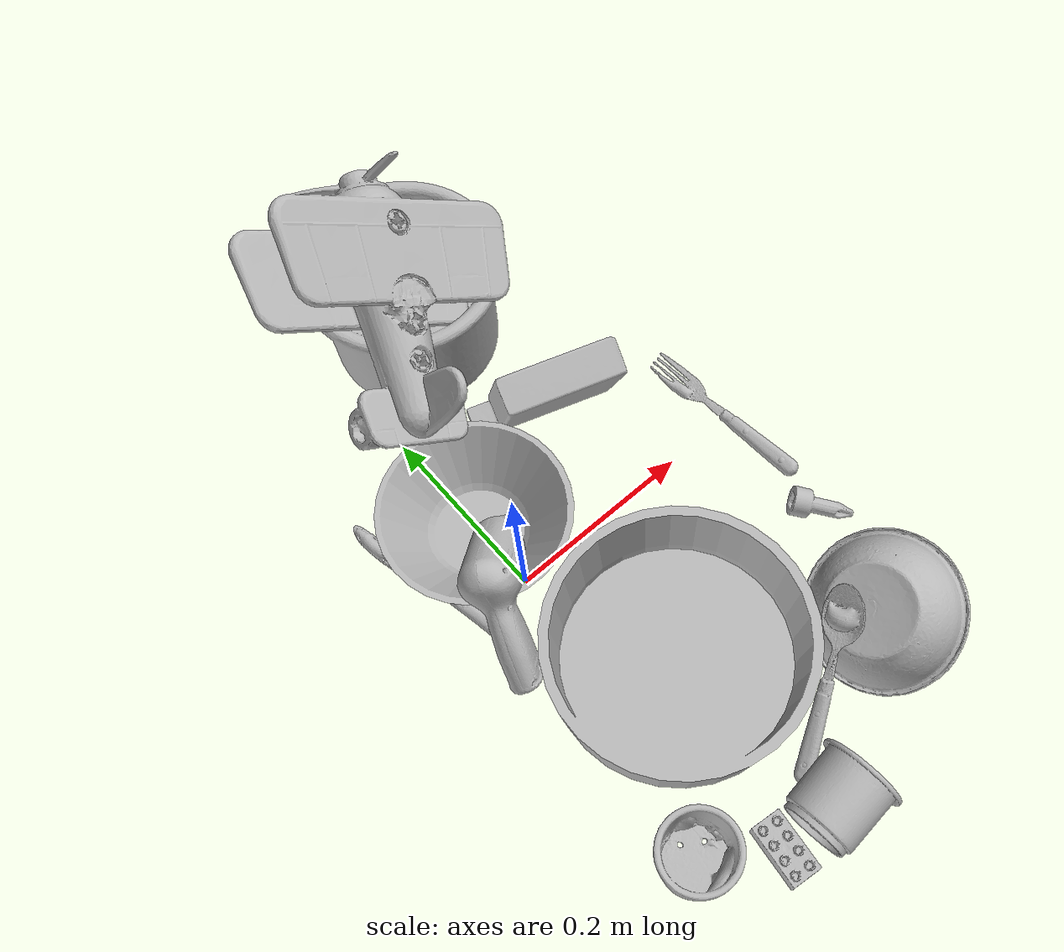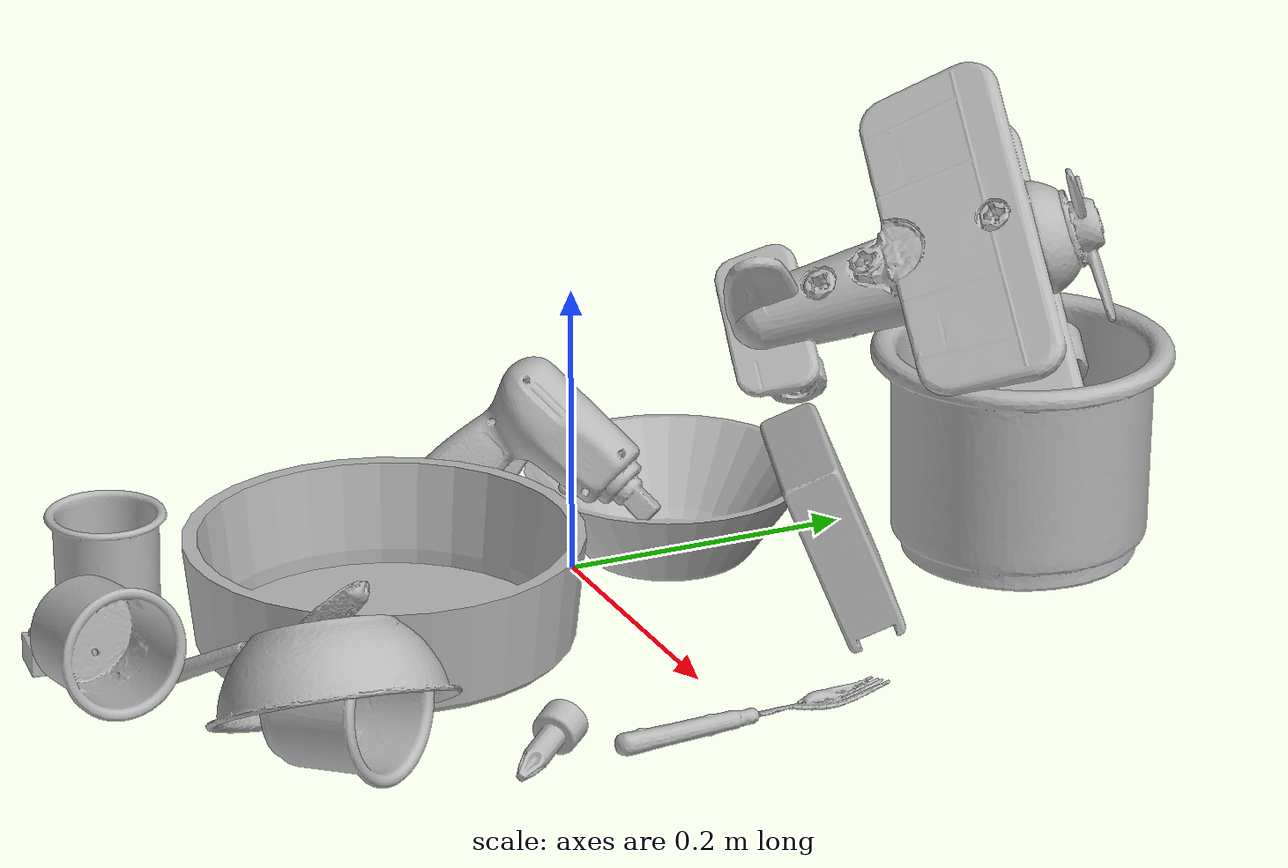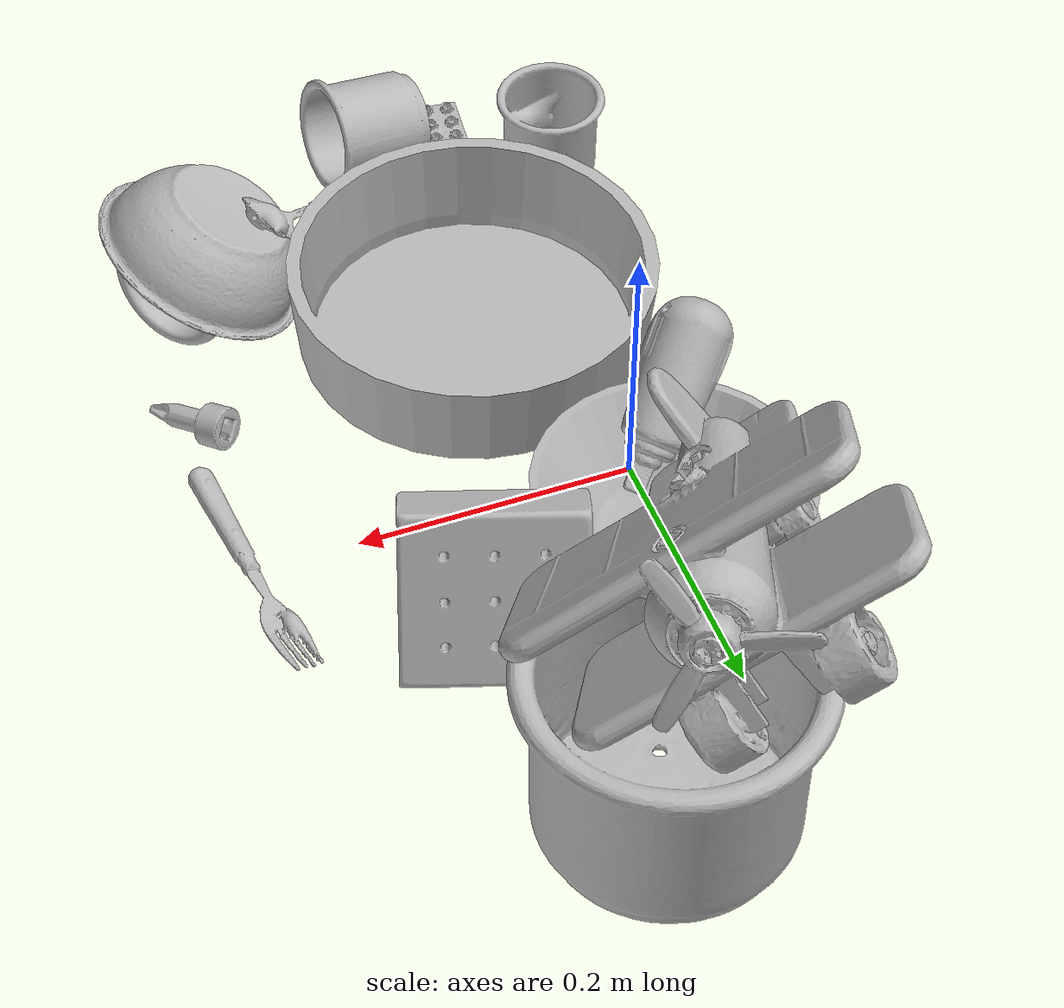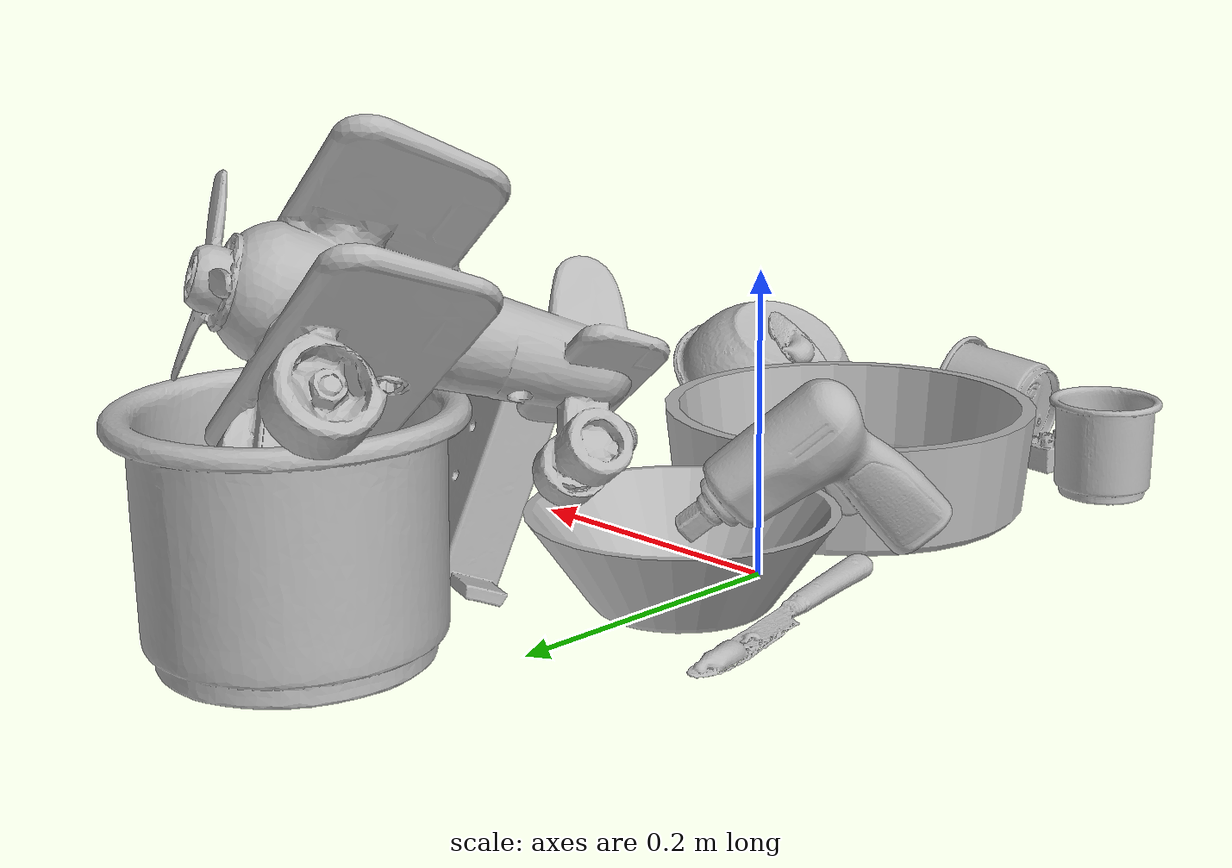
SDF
<sdf version="1.4">
  <world name="default">
    <light name="light1" type="point">
      <pose>0 0 1 0 0 0</pose>
      <diffuse>3 3 3 1</diffuse>
      <specular>3 3 3 1</specular>
    </light>
    <light name="light2" type="point">
      <pose>0 0.5 2 0 0 0</pose>
      <diffuse>1 1 1 1</diffuse>
      <specular>1 1 1 1</specular>
    </light>
    <light name="light3" type="point">
      <pose>0 0.5 2 0 0 0</pose>
      <diffuse>3 3 3 1</diffuse>
      <specular>3 3 3 1</specular>
    </light>
    <scene>
      <ambient>0.7 0.7 0.7</ambient>
    </scene>
    <model name="plate1">
      <link name="link_plate1">
        <collision name="default">
          <geometry>
            <mesh>
              <uri>model://pan_tefal/collision_meshes/collision.obj</uri>
              <scale>1.0 1.0 1.0</scale>
            </mesh>
          </geometry>
          <surface>
            <friction>
              <ode>
                <mu>0.5</mu>
                <mu2>0.5</mu2>
              </ode>
            </friction>
          <contact>
        <ode>
            <max_vel>0</max_vel>
            <min_depth>0.0001</min_depth>
            <kp>1e8</kp>
        </ode>
    </contact></surface>
        </collision>
        <visual name="default">
          <geometry>
            <mesh>
              <uri>model://pan_tefal/visual_meshes/visual.dae</uri>
              <scale>1.0 1.0 1.0</scale>
            </mesh>
          </geometry>
        </visual>
        <inertial>
          <mass>1.2414644956588745</mass>
          <pose>-0.0001800298341549933 3.278589065303095e-05 -0.00851493515074253 0.0008190165640447202 -0.0003301348973125405 -0.33185319573483557</pose>
          <inertia>
            <ixx>0.00856977</ixx>
            <iyy>0.008625018</iyy>
            <izz>0.015775295</izz>
            <ixy>0</ixy>
            <ixz>0</ixz>
            <iyz>0</iyz>
          </inertia>
        </inertial>
      </link>
      <pose>0.05789005756378174 -0.1600017100572586 0.03804998844861984 -1.0553346728723932e-09 -2.56436202134753e-08 0.8923427186321509</pose>
    </model>
    <model name="cup1">
      <link name="link_cup1">
        <collision name="default">
          <geometry>
            <mesh>
              <uri>model://j_cups/collision_meshes/collision.obj</uri>
              <scale>2.0 2.0 2.0</scale>
            </mesh>
          </geometry>
          <surface>
            <friction>
              <ode>
                <mu>0.5</mu>
                <mu2>0.5</mu2>
              </ode>
            </friction>
          <contact>
        <ode>
            <max_vel>0</max_vel>
            <min_depth>0.0001</min_depth>
            <kp>1e8</kp>
        </ode>
    </contact></surface>
        </collision>
        <visual name="default">
          <geometry>
            <mesh>
              <uri>model://j_cups/visual_meshes/visual.dae</uri>
              <scale>2.0 2.0 2.0</scale>
            </mesh>
          </geometry>
        </visual>
        <inertial>
          <mass>0.42814481258392334</mass>
          <pose>0.0012329709716141224 0.0010797895956784487 -0.002695801667869091 0.030303634199985552 0.037580068488308346 0.43868666904956827</pose>
          <inertia>
            <ixx>0.0025146077</ixx>
            <iyy>0.0025407567</iyy>
            <izz>0.0028988216</izz>
            <ixy>0</ixy>
            <ixz>0</ixz>
            <iyz>0</iyz>
          </inertia>
        </inertial>
      </link>
      <pose>0.0933929979801178 0.291197270154953 0.07600146532058716 6.113491894112538e-05 -0.00034751538441619675 0.9993717859415364</pose>
    </model>
    <model name="silverware1">
      <link name="link_silverware1">
        <collision name="default">
          <geometry>
            <mesh>
              <uri>model://fork/collision_meshes/collision.obj</uri>
              <scale>1.0 1.0 1.0</scale>
            </mesh>
          </geometry>
          <surface>
            <friction>
              <ode>
                <mu>0.5</mu>
                <mu2>0.5</mu2>
              </ode>
            </friction>
          <contact>
        <ode>
            <max_vel>0</max_vel>
            <min_depth>0.0001</min_depth>
            <kp>1e8</kp>
        </ode>
    </contact></surface>
        </collision>
        <visual name="default">
          <geometry>
            <mesh>
              <uri>model://fork/visual_meshes/visual.dae</uri>
              <scale>1.0 1.0 1.0</scale>
            </mesh>
          </geometry>
        </visual>
        <inertial>
          <mass>0.013809523545205593</mass>
          <pose>-0.029570044949650764 0.0004658822435885668 0.00032188615296036005 -0.013551743215227608 -0.010977837587661193 0.014453899243146438</pose>
          <inertia>
            <ixx>4.84102e-07</ixx>
            <iyy>3.6052697e-05</iyy>
            <izz>3.6269223e-05</izz>
            <ixy>0</ixy>
            <ixz>0</ixz>
            <iyz>0</iyz>
          </inertia>
        </inertial>
      </link>
      <pose>0.2773734927177429 0.0013120900839567184 0.005679761990904808 -0.17140311780609635 0.026406191837035888 1.6553416820521212</pose>
    </model>
    <model name="silverware2">
      <link name="link_silverware2">
        <collision name="default">
          <geometry>
            <mesh>
              <uri>model://knife/collision_meshes/collision.obj</uri>
              <scale>1.0 1.0 1.0</scale>
            </mesh>
          </geometry>
          <surface>
            <friction>
              <ode>
                <mu>0.5</mu>
                <mu2>0.5</mu2>
              </ode>
            </friction>
          <contact>
        <ode>
            <max_vel>0</max_vel>
            <min_depth>0.0001</min_depth>
            <kp>1e8</kp>
        </ode>
    </contact></surface>
        </collision>
        <visual name="default">
          <geometry>
            <mesh>
              <uri>model://knife/visual_meshes/visual.dae</uri>
              <scale>1.0 1.0 1.0</scale>
            </mesh>
          </geometry>
        </visual>
        <inertial>
          <mass>0.021972408518195152</mass>
          <pose>-0.023785250261425972 0.0015275123296305537 5.0620161346159875e-05 0.07305788583029697 0.01724841890740089 -0.007409824444555058</pose>
          <inertia>
            <ixx>6.2366604e-07</ixx>
            <iyy>8.441444e-05</iyy>
            <izz>8.46153e-05</izz>
            <ixy>0</ixy>
            <ixz>0</ixz>
            <iyz>0</iyz>
          </inertia>
        </inertial>
      </link>
      <pose>-0.07339651137590408 0.05538065731525421 0.005810708273202181 2.8893539316703816 0.02591456615764247 1.7924760188301907</pose>
    </model>
    <model name="silverware3">
      <link name="link_silverware3">
        <collision name="default">
          <geometry>
            <mesh>
              <uri>model://spoon/collision_meshes/collision.obj</uri>
              <scale>1.0 1.0 1.0</scale>
            </mesh>
          </geometry>
          <surface>
            <friction>
              <ode>
                <mu>0.5</mu>
                <mu2>0.5</mu2>
              </ode>
            </friction>
          <contact>
        <ode>
            <max_vel>0</max_vel>
            <min_depth>0.0001</min_depth>
            <kp>1e8</kp>
        </ode>
    </contact></surface>
        </collision>
        <visual name="default">
          <geometry>
            <mesh>
              <uri>model://spoon/visual_meshes/visual.dae</uri>
              <scale>1.0 1.0 1.0</scale>
            </mesh>
          </geometry>
        </visual>
        <inertial>
          <mass>0.026694269850850105</mass>
          <pose>-0.005526325199753046 -0.0016034168656915426 -0.0007271653739735484 0.035216710718480135 -0.03906584501417282 0.00615060951780049</pose>
          <inertia>
            <ixx>1.484779e-06</ixx>
            <iyy>0.000101570804</iyy>
            <izz>0.000102303035</izz>
            <ixy>0</ixy>
            <ixz>0</ixz>
            <iyz>0</iyz>
          </inertia>
        </inertial>
      </link>
      <pose>0.13438712060451508 -0.27585557103157043 0.05156669393181801 -0.35748540954304886 -0.4883509279327515 0.5757164640523126</pose>
    </model>
    <model name="cup3">
      <link name="link_cup3">
        <collision name="default">
          <geometry>
            <mesh>
              <uri>model://f_cups/collision_meshes/collision.obj</uri>
              <scale>1.0 1.0 1.0</scale>
            </mesh>
          </geometry>
          <surface>
            <friction>
              <ode>
                <mu>0.5</mu>
                <mu2>0.5</mu2>
              </ode>
            </friction>
          <contact>
        <ode>
            <max_vel>0</max_vel>
            <min_depth>0.0001</min_depth>
            <kp>1e8</kp>
        </ode>
    </contact></surface>
        </collision>
        <visual name="default">
          <geometry>
            <mesh>
              <uri>model://f_cups/visual_meshes/visual.dae</uri>
              <scale>1.0 1.0 1.0</scale>
            </mesh>
          </geometry>
        </visual>
        <inertial>
          <mass>0.09255705773830414</mass>
          <pose>-0.0031714672222733498 -0.0006240062648430467 -0.0036555363330990076 0.7862294428046025 -0.26079256257201844 -0.18237393521905715</pose>
          <inertia>
            <ixx>8.700612e-05</ixx>
            <iyy>9.127041e-05</iyy>
            <izz>9.501506e-05</izz>
            <ixy>0</ixy>
            <ixz>0</ixz>
            <iyz>0</iyz>
          </inertia>
        </inertial>
      </link>
      <pose>-0.05967416614294052 -0.3107019066810608 0.03630150854587555 8.595545297951872e-05 3.2647774027480925e-05 1.908780063274511</pose>
    </model>
    <model name="cup4">
      <link name="link_cup4">
        <collision name="default">
          <geometry>
            <mesh>
              <uri>model://g_cups/collision_meshes/collision.obj</uri>
              <scale>1.0 1.0 1.0</scale>
            </mesh>
          </geometry>
          <surface>
            <friction>
              <ode>
                <mu>0.5</mu>
                <mu2>0.5</mu2>
              </ode>
            </friction>
          <contact>
        <ode>
            <max_vel>0</max_vel>
            <min_depth>0.0001</min_depth>
            <kp>1e8</kp>
        </ode>
    </contact></surface>
        </collision>
        <visual name="default">
          <geometry>
            <mesh>
              <uri>model://g_cups/visual_meshes/visual.dae</uri>
              <scale>1.0 1.0 1.0</scale>
            </mesh>
          </geometry>
        </visual>
        <inertial>
          <mass>0.09045539051294327</mass>
          <pose>-0.0007946272380650043 -4.206356970826164e-05 -0.0021329366136342287 -0.21382427470227655 -0.31410603394020525 0.31120189460551634</pose>
          <inertia>
            <ixx>0.000105581705</ixx>
            <iyy>0.000105222556</iyy>
            <izz>0.000109364446</izz>
            <ixy>0</ixy>
            <ixz>0</ixz>
            <iyz>0</iyz>
          </inertia>
        </inertial>
      </link>
      <pose>0.06848618388175964 -0.3600713610649109 0.04017789289355278 1.4545340298876126 0.3195861950554548 1.6373450177762356</pose>
    </model>
    <model name="cup5">
      <link name="link_cup5">
        <collision name="default">
          <geometry>
            <mesh>
              <uri>model://i_cups/collision_meshes/collision.obj</uri>
              <scale>1.0 1.0 1.0</scale>
            </mesh>
          </geometry>
          <surface>
            <friction>
              <ode>
                <mu>0.5</mu>
                <mu2>0.5</mu2>
              </ode>
            </friction>
          <contact>
        <ode>
            <max_vel>0</max_vel>
            <min_depth>0.0001</min_depth>
            <kp>1e8</kp>
        </ode>
    </contact></surface>
        </collision>
        <visual name="default">
          <geometry>
            <mesh>
              <uri>model://i_cups/visual_meshes/visual.dae</uri>
              <scale>1.0 1.0 1.0</scale>
            </mesh>
          </geometry>
        </visual>
        <inertial>
          <mass>0.0815454050898552</mass>
          <pose>0.0001123997790273279 0.00016797320859041065 -0.0008579009445384145 -0.02898318353055437 -0.03987301779891007 -0.3459082462056558</pose>
          <inertia>
            <ixx>0.0001129008</ixx>
            <iyy>0.000113895556</iyy>
            <izz>0.00012618494</izz>
            <ixy>0</ixy>
            <ixz>0</ixz>
            <iyz>0</iyz>
          </inertia>
        </inertial>
      </link>
      <pose>0.23099493980407715 -0.2589336335659027 0.044874295592308044 -1.4159444137942807 0.5462045777888845 -0.8667874888735314</pose>
    </model>
    <model name="bowl1">
      <link name="link_bowl1">
        <collision name="default">
          <geometry>
            <mesh>
              <uri>model://bowl/collision_meshes/collision.obj</uri>
              <scale>1.0 1.0 1.0</scale>
            </mesh>
          </geometry>
          <surface>
            <friction>
              <ode>
                <mu>0.5</mu>
                <mu2>0.5</mu2>
              </ode>
            </friction>
          <contact>
        <ode>
            <max_vel>0</max_vel>
            <min_depth>0.0001</min_depth>
            <kp>1e8</kp>
        </ode>
    </contact></surface>
        </collision>
        <visual name="default">
          <geometry>
            <mesh>
              <uri>model://bowl/visual_meshes/visual.dae</uri>
              <scale>1.0 1.0 1.0</scale>
            </mesh>
          </geometry>
        </visual>
        <inertial>
          <mass>0.1349102407693863</mass>
          <pose>0.00020445192058105022 -0.0010302069131284952 -0.0008042648551054299 -0.01576408127006171 0.01454679335072616 0.7140405111038781</pose>
          <inertia>
            <ixx>0.00030989948</ixx>
            <iyy>0.00030297515</iyy>
            <izz>0.0005213576</izz>
            <ixy>0</ixy>
            <ixz>0</ixz>
            <iyz>0</iyz>
          </inertia>
        </inertial>
      </link>
      <pose>0.2174808531999588 -0.2626118063926697 0.06354638934135437 2.777062994251231 0.38634250849172347 2.2090939468257482</pose>
    </model>
    <model name="bowl2">
      <link name="link_bowl2">
        <collision name="default">
          <geometry>
            <mesh>
              <uri>model://bowl_a/collision_meshes/collision.obj</uri>
              <scale>1.0 1.0 1.0</scale>
            </mesh>
          </geometry>
          <surface>
            <friction>
              <ode>
                <mu>0.5</mu>
                <mu2>0.5</mu2>
              </ode>
            </friction>
          <contact>
        <ode>
            <max_vel>0</max_vel>
            <min_depth>0.0001</min_depth>
            <kp>1e8</kp>
        </ode>
    </contact></surface>
        </collision>
        <visual name="default">
          <geometry>
            <mesh>
              <uri>model://bowl_a/visual_meshes/visual.dae</uri>
              <scale>1.0 1.0 1.0</scale>
            </mesh>
          </geometry>
        </visual>
        <inertial>
          <mass>0.4816342294216156</mass>
          <pose>0.000278677063761279 4.73155923828017e-05 -0.0013765296898782253 -0.0009805427744981278 -0.0010938171301827632 -0.19123023792191385</pose>
          <inertia>
            <ixx>0.0013712347</ixx>
            <iyy>0.0013796532</iyy>
            <izz>0.0024387941</izz>
            <ixy>0</ixy>
            <ixz>0</ixz>
            <iyz>0</iyz>
          </inertia>
        </inertial>
      </link>
      <pose>-0.000997126568108797 0.07177193462848663 0.030383434146642685 8.644734653308018e-08 -1.578801328726529e-05 0.6065283430964509</pose>
    </model>
    <model name="toy1">
      <link name="link_toy1">
        <collision name="default">
          <geometry>
            <mesh>
              <uri>model://a_toy_airplane/collision_meshes/collision.obj</uri>
              <scale>1.0 1.0 1.0</scale>
            </mesh>
          </geometry>
          <surface>
            <friction>
              <ode>
                <mu>0.5</mu>
                <mu2>0.5</mu2>
              </ode>
            </friction>
          <contact>
        <ode>
            <max_vel>0</max_vel>
            <min_depth>0.0001</min_depth>
            <kp>1e8</kp>
        </ode>
    </contact></surface>
        </collision>
        <visual name="default">
          <geometry>
            <mesh>
              <uri>model://a_toy_airplane/visual_meshes/visual.dae</uri>
              <scale>1.0 1.0 1.0</scale>
            </mesh>
          </geometry>
        </visual>
        <inertial>
          <mass>1.6936675310134888</mass>
          <pose>0.025165095925331116 -0.0037073225248605013 -0.0011962444987148046 -0.01201699252327453 -0.146634996228158 0.004149091382990828</pose>
          <inertia>
            <ixx>0.0061505185</ixx>
            <iyy>0.008962553</iyy>
            <izz>0.010494047</izz>
            <ixy>0</ixy>
            <ixz>0</ixz>
            <iyz>0</iyz>
          </inertia>
        </inertial>
      </link>
      <pose>0.04020678251981735 0.23299400508403778 0.19030311703681946 0.6298791933177333 -0.16027802014810452 1.240549046038218</pose>
    </model>
    <model name="toy2">
      <link name="link_toy2">
        <collision name="default">
          <geometry>
            <mesh>
              <uri>model://c_lego_duplo/collision_meshes/collision.obj</uri>
              <scale>1.0 1.0 1.0</scale>
            </mesh>
          </geometry>
          <surface>
            <friction>
              <ode>
                <mu>0.5</mu>
                <mu2>0.5</mu2>
              </ode>
            </friction>
          <contact>
        <ode>
            <max_vel>0</max_vel>
            <min_depth>0.0001</min_depth>
            <kp>1e8</kp>
        </ode>
    </contact></surface>
        </collision>
        <visual name="default">
          <geometry>
            <mesh>
              <uri>model://c_lego_duplo/visual_meshes/visual.dae</uri>
              <scale>1.0 1.0 1.0</scale>
            </mesh>
          </geometry>
        </visual>
        <inertial>
          <mass>0.01636073924601078</mass>
          <pose>0.000316459103487432 0.0001946457487065345 0.001045315177179873 -0.01152079658800189 0.005900071110555828 0.03110036538654021</pose>
          <inertia>
            <ixx>6.295917e-06</ixx>
            <iyy>2.0111436e-06</iyy>
            <izz>7.357428e-06</izz>
            <ixy>0</ixy>
            <ixz>0</ixz>
            <iyz>0</iyz>
          </inertia>
        </inertial>
      </link>
      <pose>0.00823562778532505 -0.3579913079738617 0.011981489136815071 0.008019386822842712 -0.0020914166820045045 -0.14746314342684866</pose>
    </model>
    <model name="toy3">
      <link name="link_toy3">
        <collision name="default">
          <geometry>
            <mesh>
              <uri>model://nine_hole_peg_test/collision_meshes/collision.obj</uri>
              <scale>1.0 1.0 1.0</scale>
            </mesh>
          </geometry>
          <surface>
            <friction>
              <ode>
                <mu>0.5</mu>
                <mu2>0.5</mu2>
              </ode>
            </friction>
          <contact>
        <ode>
            <max_vel>0</max_vel>
            <min_depth>0.0001</min_depth>
            <kp>1e8</kp>
        </ode>
    </contact></surface>
        </collision>
        <visual name="default">
          <geometry>
            <mesh>
              <uri>model://nine_hole_peg_test/visual_meshes/visual.dae</uri>
              <scale>1.0 1.0 1.0</scale>
            </mesh>
          </geometry>
        </visual>
        <inertial>
          <mass>0.9464474320411682</mass>
          <pose>-0.004617386497557163 -0.009647613391280174 2.646068787726108e-05 -0.0014666793204268175 0.0007194166079670136 -0.6342420609245715</pose>
          <inertia>
            <ixx>0.0014799263</ixx>
            <iyy>0.0013817915</iyy>
            <izz>0.002593267</izz>
            <ixy>0</ixy>
            <ixz>0</ixz>
            <iyz>0</iyz>
          </inertia>
        </inertial>
      </link>
      <pose>0.13779103755950928 0.1275511085987091 0.06052215397357941 0.008593723964837633 1.1833624366091413 1.2565872415094503</pose>
    </model>
    <model name="toy4">
      <link name="link_toy4">
        <collision name="default">
          <geometry>
            <mesh>
              <uri>model://d_toy_airplane/collision_meshes/collision.obj</uri>
              <scale>1.0 1.0 1.0</scale>
            </mesh>
          </geometry>
          <surface>
            <friction>
              <ode>
                <mu>0.5</mu>
                <mu2>0.5</mu2>
              </ode>
            </friction>
          <contact>
        <ode>
            <max_vel>0</max_vel>
            <min_depth>0.0001</min_depth>
            <kp>1e8</kp>
        </ode>
    </contact></surface>
        </collision>
        <visual name="default">
          <geometry>
            <mesh>
              <uri>model://d_toy_airplane/visual_meshes/visual.dae</uri>
              <scale>1.0 1.0 1.0</scale>
            </mesh>
          </geometry>
        </visual>
        <inertial>
          <mass>0.021776849403977394</mass>
          <pose>9.410295024281368e-05 -5.809321373817511e-05 -0.011728097684681416 0.0002661671660100631 0.004679022103859929 0.519291232465637</pose>
          <inertia>
            <ixx>6.5282748e-06</ixx>
            <iyy>6.5331997e-06</iyy>
            <izz>1.9709291e-06</izz>
            <ixy>0</ixy>
            <ixz>0</ixz>
            <iyz>0</iyz>
          </inertia>
        </inertial>
      </link>
      <pose>0.27636128664016724 -0.14255627989768982 0.011460746638476849 1.9236591755221952 -0.9526302490155114 0.4004104603300637</pose>
    </model>
    <model name="toy5">
      <link name="link_toy5">
        <collision name="default">
          <geometry>
            <mesh>
              <uri>model://b_toy_airplane/collision_meshes/collision.obj</uri>
              <scale>1.0 1.0 1.0</scale>
            </mesh>
          </geometry>
          <surface>
            <friction>
              <ode>
                <mu>0.5</mu>
                <mu2>0.5</mu2>
              </ode>
            </friction>
          <contact>
        <ode>
            <max_vel>0</max_vel>
            <min_depth>0.0001</min_depth>
            <kp>1e8</kp>
        </ode>
    </contact></surface>
        </collision>
        <visual name="default">
          <geometry>
            <mesh>
              <uri>model://b_toy_airplane/visual_meshes/visual.dae</uri>
              <scale>1.0 1.0 1.0</scale>
            </mesh>
          </geometry>
        </visual>
        <inertial>
          <mass>0.25237053632736206</mass>
          <pose>0.00508136348798871 0.004015584476292133 0.00954306498169899 -0.04001808288480986 -0.0402218063825515 -0.5601503558886168</pose>
          <inertia>
            <ixx>0.00046853055</ixx>
            <iyy>0.00018727628</iyy>
            <izz>0.0005828988</izz>
            <ixy>0</ixy>
            <ixz>0</ixz>
            <iyz>0</iyz>
          </inertia>
        </inertial>
      </link>
      <pose>-0.04805128276348114 -0.013081780634820461 0.07478994131088257 1.2736241314339816 0.6895025928858671 0.7735793826663577</pose>
    </model>
  <physics type="ode">
      <max_contacts>50</max_contacts>
      <ode>
        <solver>
          <type>quick</type>
          <iters>75</iters>
        </solver>
        <constraints>
          <contact_max_correcting_vel>0</contact_max_correcting_vel>
          <contact_surface_layer>0</contact_surface_layer>
        </constraints>
      </ode>
    </physics></world>
</sdf>
